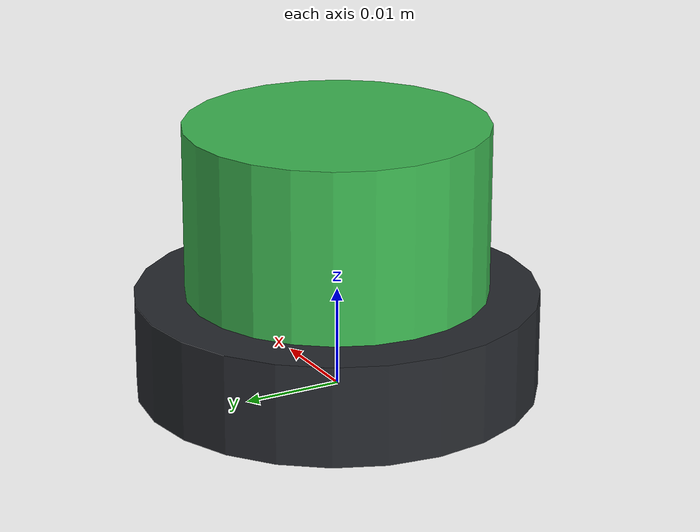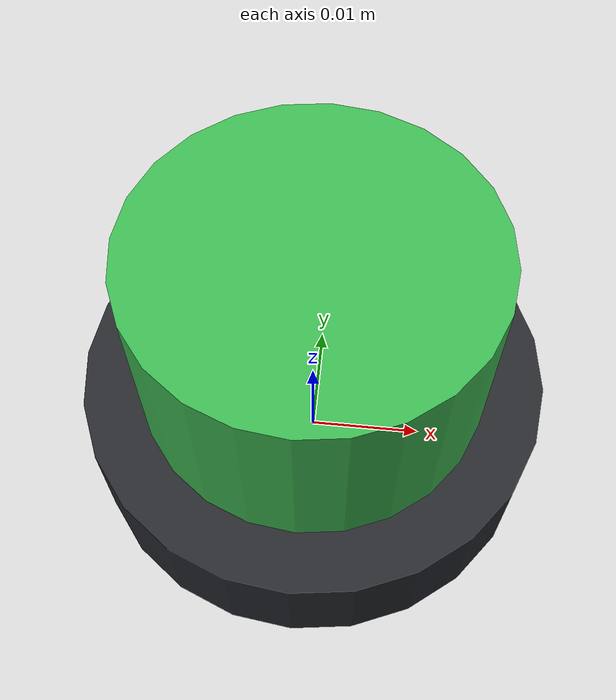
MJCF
<mujoco model="green_knob">
  <worldbody>
    <body name="green_knob">
      <freejoint/>
      <geom
        name="green_knob_base"
        type="cylinder"
        pos="0 0 0.005"
        size="0.020 0.005"
        rgba="0.15 0.16 0.18 1"
      />
      <geom
        name="green_knob_cap"
        type="cylinder"
        pos="0 0 0.016"
        size="0.015 0.011"
        rgba="0.24 0.72 0.32 1"
      />
      <site name="green_knob_tip" pos="0 0.012 0.016" size="0.002" rgba="1 1 1 1"/>
    </body>
  </worldbody>
</mujoco>
